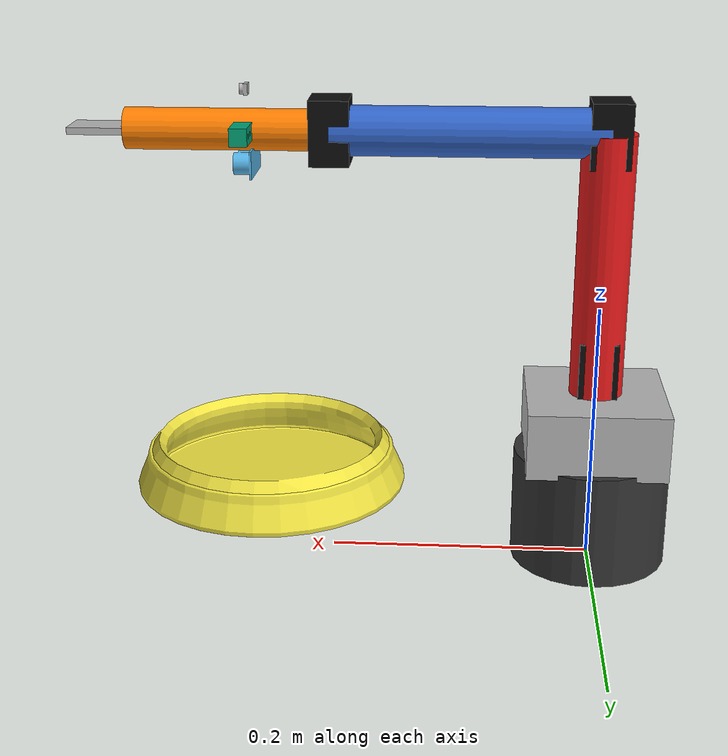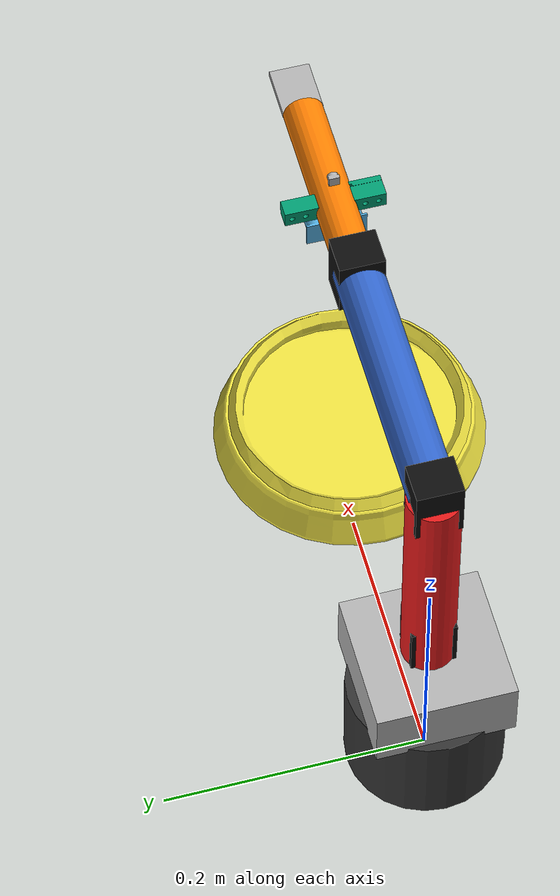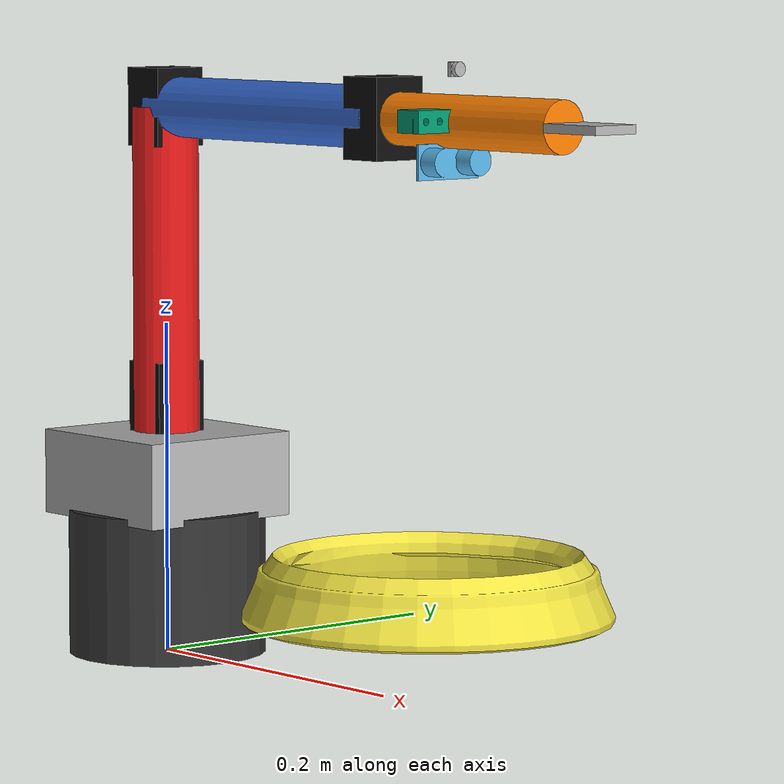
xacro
<?xml version="1.0"?>
<robot xmlns:xacro="http://www.ros.org/wiki/xacro" name="feeding_robot">

  <!-- Adaptive Feeding Robot - Top Level URDF                       -->
  <!-- 4-DOF Open Manipulator for Assistive Feeding                  -->
  <!-- Anglia Ruskin University                                      -->

  <xacro:arg name="use_sim" default="true"/>
  <xacro:arg name="use_meshes" default="false"/>

  <!-- Material definitions -->
  <xacro:include filename="$(find feeding_robot)/description/materials.xacro"/>

  <!-- Inertia calculation macros -->
  <xacro:include filename="$(find feeding_robot)/description/inertial_macros.xacro"/>

  <!-- Core robot description: links, joints, kinematics -->
  <xacro:include filename="$(find feeding_robot)/description/feeding_robot_core.xacro"/>

  <!-- ros2_control hardware interfaces -->
  <xacro:include filename="$(find feeding_robot)/description/feeding_robot_ros2_control.xacro"/>

  <!-- Gazebo-specific plugins and materials (only for simulation) -->
  <xacro:if value="$(arg use_sim)">
    <xacro:include filename="$(find feeding_robot)/description/gazebo_plugins.xacro"/>
  </xacro:if>

</robot>

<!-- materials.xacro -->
<robot xmlns:xacro="http://www.ros.org/wiki/xacro">

  <material name="white">
    <color rgba="1.0 1.0 1.0 1.0"/>
  </material>

  <material name="dark_grey">
    <color rgba="0.2 0.2 0.2 1.0"/>
  </material>

  <material name="light_grey">
    <color rgba="0.7 0.7 0.7 1.0"/>
  </material>

  <material name="blue">
    <color rgba="0.2 0.4 0.8 1.0"/>
  </material>

  <material name="red">
    <color rgba="0.9 0.1 0.1 1.0"/>
  </material>

  <material name="orange">
    <color rgba="1.0 0.5 0.0 1.0"/>
  </material>

  <material name="green">
    <color rgba="0.2 0.8 0.2 1.0"/>
  </material>

  <material name="black">
    <color rgba="0.05 0.05 0.05 1.0"/>
  </material>

</robot>

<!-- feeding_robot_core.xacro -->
<robot xmlns:xacro="http://www.ros.org/wiki/xacro">

  <!-- Adaptive Feeding Robot - 4 DOF Open Manipulator               -->
  <!-- CAD: Auto Feeder SSE v222.step                                -->
  <!-- Joints: Base Y, Lower Z, Upper Z, Feeder                     -->
  <!-- Actuators: 4x Dynamixel XM430-W350R                          -->
  <!-- CAD coordinate system: Z up, X horizontal (arm extends +X)   -->
  <!-- Assembly bounds (mm): X[-75,343] Y[-55,56] Z[-25,425]        -->

  <!-- ==================== PARAMETERS ==================== -->

  <!-- Joint positions in CAD coordinates (mm), converted to metres -->
  <!-- These are derived from the bounding box analysis of grouped solids -->

  <!-- Base Y joint: at top of base platform, Z=88mm -->
  <xacro:property name="base_top_z" value="0.088"/>

  <!-- Lower Z joint (shoulder): at Z=131mm, X=-16mm -->
  <!-- This is where the shoulder motor stack meets the vertical arm -->
  <xacro:property name="shoulder_joint_z" value="0.131"/>

  <!-- Upper Z joint (elbow): at top of vertical arm, Z=331mm, X=-5mm -->
  <!-- Transition from vertical to horizontal arm -->
  <xacro:property name="elbow_joint_z" value="0.331"/>
  <xacro:property name="lower_arm_length" value="${elbow_joint_z - shoulder_joint_z}"/>

  <!-- Feeder joint (wrist): at X=194mm from CAD origin, Z=351mm -->
  <!-- Where the horizontal arm meets the feeder end effector -->
  <xacro:property name="upper_arm_length" value="0.199"/>

  <!-- Feeder length to tip -->
  <xacro:property name="feeder_length" value="0.148"/>

  <!-- Motor specs: Dynamixel XM430-W350R -->
  <xacro:property name="max_velocity" value="4.8172"/>
  <xacro:property name="max_effort" value="4.1"/>

  <!-- Mesh file paths -->
  <xacro:property name="mesh_vis" value="package://feeding_robot/meshes/visual"/>
  <xacro:property name="mesh_col" value="package://feeding_robot/meshes/collision"/>

  <!-- Switch between mesh and primitive visuals -->
  <xacro:arg name="use_meshes" default="false"/>
  <xacro:property name="use_meshes" value="$(arg use_meshes)"/>

  <!-- STL scale: CAD is in mm, URDF uses metres -->
  <xacro:property name="stl_scale" value="0.001 0.001 0.001"/>

  <!-- ==================== WORLD LINK ==================== -->
  <link name="world"/>

  <joint name="world_to_base" type="fixed">
    <parent link="world"/>
    <child link="base_link"/>
    <origin xyz="0 0 0" rpy="0 0 0"/>
  </joint>

  <!-- ==================== BASE LINK ==================== -->
  <!-- CAD solids 59-63: base platform, Z[-25, 88]mm -->
  <link name="base_link">
    <xacro:if value="${use_meshes}">
      <visual>
        <geometry>
          <mesh filename="${mesh_vis}/base_link.stl" scale="${stl_scale}"/>
        </geometry>
        <origin xyz="0 0 0" rpy="0 0 0"/>
        <material name="dark_grey"/>
      </visual>
      <collision>
        <geometry>
          <mesh filename="${mesh_col}/base_link.stl" scale="${stl_scale}"/>
        </geometry>
        <origin xyz="0 0 0" rpy="0 0 0"/>
      </collision>
    </xacro:if>
    <xacro:unless value="${use_meshes}">
      <visual>
        <geometry>
          <cylinder radius="0.060" length="${base_top_z}"/>
        </geometry>
        <origin xyz="0 0 ${base_top_z/2}" rpy="0 0 0"/>
        <material name="dark_grey"/>
      </visual>
      <collision>
        <geometry>
          <cylinder radius="0.060" length="${base_top_z}"/>
        </geometry>
        <origin xyz="0 0 ${base_top_z/2}" rpy="0 0 0"/>
      </collision>
    </xacro:unless>
    <inertial>
      <mass value="0.8"/>
      <origin xyz="-0.034 0 0.032" rpy="0 0 0"/>
      <inertia ixx="0.002" ixy="0.0" ixz="0.0"
               iyy="0.002" iyz="0.0" izz="0.001"/>
    </inertial>
  </link>

  <!-- ==================== BASE Y JOINT (Yaw) ==================== -->
  <!-- At the top of the base platform, rotates around vertical Z axis -->
  <joint name="base_y_joint" type="continuous">
    <parent link="base_link"/>
    <child link="shoulder_link"/>
    <origin xyz="0 0 ${base_top_z}" rpy="0 0 0"/>
    <axis xyz="0 0 1"/>
    <limit velocity="${max_velocity}" effort="${max_effort}"/>
    <dynamics damping="0.5" friction="0.1"/>
  </joint>

  <!-- ==================== SHOULDER LINK ==================== -->
  <!-- CAD solids 0-10,58: motor stack, Z[81, 132]mm -->
  <!-- This link sits on top of the base and contains the shoulder motors -->
  <link name="shoulder_link">
    <xacro:if value="${use_meshes}">
      <visual>
        <geometry>
          <mesh filename="${mesh_vis}/shoulder_link.stl" scale="${stl_scale}"/>
        </geometry>
        <!-- Shift mesh so base_y_joint (CAD 0,0,88) is at link origin -->
        <origin xyz="0 0 -0.088" rpy="0 0 0"/>
        <material name="dark_grey"/>
      </visual>
      <collision>
        <geometry>
          <mesh filename="${mesh_col}/shoulder_link.stl" scale="${stl_scale}"/>
        </geometry>
        <origin xyz="0 0 -0.088" rpy="0 0 0"/>
      </collision>
    </xacro:if>
    <xacro:unless value="${use_meshes}">
      <visual>
        <geometry>
          <box size="0.105 0.105 0.051"/>
        </geometry>
        <origin xyz="0 0 ${(shoulder_joint_z - base_top_z)/2}" rpy="0 0 0"/>
        <material name="light_grey"/>
      </visual>
      <collision>
        <geometry>
          <box size="0.105 0.105 0.051"/>
        </geometry>
        <origin xyz="0 0 ${(shoulder_joint_z - base_top_z)/2}" rpy="0 0 0"/>
      </collision>
    </xacro:unless>
    <inertial>
      <mass value="0.5"/>
      <origin xyz="0 0 ${(shoulder_joint_z - base_top_z)/2}" rpy="0 0 0"/>
      <inertia ixx="0.001" ixy="0.0" ixz="0.0"
               iyy="0.001" iyz="0.0" izz="0.001"/>
    </inertial>
  </link>

  <!-- ==================== LOWER Z JOINT (Shoulder Pitch) ==================== -->
  <!-- At the top of the shoulder motor stack, Z=131mm -->
  <joint name="lower_z_joint" type="revolute">
    <parent link="shoulder_link"/>
    <child link="lower_arm_link"/>
    <origin xyz="0 0 ${shoulder_joint_z - base_top_z}" rpy="0 0 0"/>
    <axis xyz="0 1 0"/>
    <limit lower="${-90.0 * pi / 180.0}" upper="${90.0 * pi / 180.0}"
           velocity="${max_velocity}" effort="${max_effort}"/>
    <dynamics damping="0.5" friction="0.1"/>
  </joint>

  <!-- ==================== LOWER ARM LINK ==================== -->
  <!-- CAD solids 11-21,23-26: vertical arm segment, Z[127, 331]mm -->
  <!-- Goes upward 200mm from shoulder to elbow -->
  <link name="lower_arm_link">
    <xacro:if value="${use_meshes}">
      <visual>
        <geometry>
          <mesh filename="${mesh_vis}/lower_arm_link.stl" scale="${stl_scale}"/>
        </geometry>
        <origin xyz="0.016 0 -0.131" rpy="0 0 0"/>
        <material name="light_grey"/>
      </visual>
      <collision>
        <geometry>
          <mesh filename="${mesh_col}/lower_arm_link.stl" scale="${stl_scale}"/>
        </geometry>
        <origin xyz="0.016 0 -0.131" rpy="0 0 0"/>
      </collision>
    </xacro:if>
    <xacro:unless value="${use_meshes}">
      <visual>
        <geometry>
          <cylinder radius="0.020" length="${lower_arm_length}"/>
        </geometry>
        <origin xyz="0 0 ${lower_arm_length/2}" rpy="0 0 0"/>
        <material name="red"/>
      </visual>
      <visual>
        <geometry>
          <box size="0.029 0.034 0.047"/>
        </geometry>
        <origin xyz="0 0 0.023" rpy="0 0 0"/>
        <material name="black"/>
      </visual>
      <collision>
        <geometry>
          <box size="0.029 0.045 ${lower_arm_length}"/>
        </geometry>
        <origin xyz="0 0 ${lower_arm_length/2}" rpy="0 0 0"/>
      </collision>
    </xacro:unless>
    <inertial>
      <mass value="0.5"/>
      <origin xyz="0 0 ${lower_arm_length/2}" rpy="0 0 0"/>
      <inertia ixx="0.003" ixy="0.0" ixz="0.0"
               iyy="0.003" iyz="0.0" izz="0.0003"/>
    </inertial>
  </link>

  <!-- ==================== UPPER Z JOINT (Elbow Pitch) ==================== -->
  <!-- At the top of the vertical arm, Z=331mm, transition to horizontal -->
  <joint name="upper_z_joint" type="revolute">
    <parent link="lower_arm_link"/>
    <child link="upper_arm_link"/>
    <origin xyz="0 0 ${lower_arm_length}" rpy="0 0 0"/>
    <axis xyz="0 -1 0"/>
    <limit lower="${-120.0 * pi / 180.0}" upper="${75.0 * pi / 180.0}"
           velocity="${max_velocity}" effort="${max_effort}"/>
    <dynamics damping="0.3" friction="0.1"/>
  </joint>

  <!-- ==================== UPPER ARM LINK ==================== -->
  <!-- CAD solids 22,27-52: horizontal arm, X[-28, 198]mm Z[331, 386]mm -->
  <!-- Extends horizontally ~200mm from elbow to wrist -->
  <link name="upper_arm_link">
    <xacro:if value="${use_meshes}">
      <visual>
        <geometry>
          <mesh filename="${mesh_vis}/upper_arm_link.stl" scale="${stl_scale}"/>
        </geometry>
        <origin xyz="0.005 0 -0.331" rpy="0 0 0"/>
        <material name="light_grey"/>
      </visual>
      <collision>
        <geometry>
          <mesh filename="${mesh_col}/upper_arm_link.stl" scale="${stl_scale}"/>
        </geometry>
        <origin xyz="0.005 0 -0.331" rpy="0 0 0"/>
      </collision>
    </xacro:if>
    <xacro:unless value="${use_meshes}">
      <visual>
        <geometry>
          <cylinder radius="0.018" length="${upper_arm_length}"/>
        </geometry>
        <origin xyz="${upper_arm_length/2} 0 0" rpy="0 ${pi/2} 0"/>
        <material name="blue"/>
      </visual>
      <visual>
        <geometry>
          <box size="0.029 0.034 0.047"/>
        </geometry>
        <origin xyz="0 0 0" rpy="0 0 0"/>
        <material name="black"/>
      </visual>
      <collision>
        <geometry>
          <box size="${upper_arm_length} 0.045 0.055"/>
        </geometry>
        <origin xyz="${upper_arm_length/2} 0 0" rpy="0 0 0"/>
      </collision>
    </xacro:unless>
    <inertial>
      <mass value="0.6"/>
      <origin xyz="${upper_arm_length/2} 0 0" rpy="0 0 0"/>
      <inertia ixx="0.0005" ixy="0.0" ixz="0.0"
               iyy="0.004" iyz="0.0" izz="0.004"/>
    </inertial>
  </link>

  <!-- ==================== FEEDER JOINT (Wrist Pitch) ==================== -->
  <!-- Where horizontal arm meets feeder, CAD X=194mm -->
  <joint name="feeder_joint" type="revolute">
    <parent link="upper_arm_link"/>
    <child link="feeder_link"/>
    <origin xyz="${upper_arm_length} 0 0" rpy="0 0 0"/>
    <axis xyz="0 -1 0"/>
    <limit lower="${-90.0 * pi / 180.0}" upper="${115.0 * pi / 180.0}"
           velocity="${max_velocity}" effort="${max_effort}"/>
    <dynamics damping="0.2" friction="0.05"/>
  </joint>

  <!-- ==================== FEEDER LINK (End Effector) ==================== -->
  <!-- CAD solids 53-57,64-66: feeder mechanism, X[194, 342]mm -->
  <link name="feeder_link">
    <xacro:if value="${use_meshes}">
      <visual>
        <geometry>
          <mesh filename="${mesh_vis}/frontface.stl" scale="${stl_scale}"/>
        </geometry>
        <!-- Offset: shift mesh so wrist joint (CAD X=194,Y=0,Z=351) is at link origin -->
        <origin xyz="-0.194 0 -0.351" rpy="0 0 0"/>
        <material name="black"/>
      </visual>
      <collision>
        <geometry>
          <mesh filename="${mesh_col}/feeder_link.stl" scale="${stl_scale}"/>
        </geometry>
        <origin xyz="-0.194 0 -0.351" rpy="0 0 0"/>
      </collision>
    </xacro:if>
    <xacro:unless value="${use_meshes}">
      <visual>
        <geometry>
          <cylinder radius="0.015" length="${feeder_length}"/>
        </geometry>
        <origin xyz="${feeder_length/2} 0 0" rpy="0 ${pi/2} 0"/>
        <material name="orange"/>
      </visual>
      <visual>
        <geometry>
          <box size="0.029 0.034 0.047"/>
        </geometry>
        <origin xyz="0 0 0" rpy="0 0 0"/>
        <material name="black"/>
      </visual>
      <visual>
        <geometry>
          <box size="0.04 0.03 0.005"/>
        </geometry>
        <origin xyz="${feeder_length + 0.02} 0 0" rpy="0 0 0"/>
        <material name="light_grey"/>
      </visual>
      <collision>
        <geometry>
          <box size="${feeder_length + 0.04} 0.103 0.121"/>
        </geometry>
        <origin xyz="${feeder_length/2} 0 0" rpy="0 0 0"/>
      </collision>
    </xacro:unless>
    <inertial>
      <mass value="0.35"/>
      <origin xyz="${feeder_length/2} 0 0" rpy="0 0 0"/>
      <inertia ixx="0.0005" ixy="0.0" ixz="0.0"
               iyy="0.001" iyz="0.0" izz="0.001"/>
    </inertial>
  </link>

  <!-- ==================== END EFFECTOR FRAME ==================== -->
  <link name="spoon_tip_frame"/>

  <joint name="feeder_to_spoon_tip" type="fixed">
    <parent link="feeder_link"/>
    <child link="spoon_tip_frame"/>
    <origin xyz="${feeder_length + 0.02} 0 0" rpy="0 0 0"/>
  </joint>

  <!-- ==================== CAMERA (Raspberry Pi Camera V2.1) ==================== -->
  <link name="camera_link">
    <visual>
      <geometry>
        <mesh filename="${mesh_vis}/camera.stl" scale="${stl_scale}"/>
      </geometry>
      <origin xyz="${-0.194 - 0.03} 0 ${-0.351 + 0.05}" rpy="0 0 0"/>
    </visual>
    <collision>
      <geometry>
        <mesh filename="${mesh_vis}/camera.stl" scale="${stl_scale}"/>
      </geometry>
      <origin xyz="${-0.194 - 0.03} 0 ${-0.351 + 0.05}" rpy="0 0 0"/>
    </collision>
    <inertial>
      <mass value="0.003"/>
      <inertia ixx="0.000001" ixy="0.0" ixz="0.0"
               iyy="0.000001" iyz="0.0" izz="0.000001"/>
    </inertial>
  </link>

  <joint name="camera_joint" type="fixed">
    <parent link="feeder_link"/>
    <child link="camera_link"/>
    <origin xyz="0.03 0 -0.05" rpy="0 0 0"/>
  </joint>

  <link name="camera_optical_frame"/>

  <joint name="camera_optical_joint" type="fixed">
    <parent link="camera_link"/>
    <child link="camera_optical_frame"/>
    <origin xyz="0 0 0" rpy="${-pi/2} 0 ${-pi/2}"/>
  </joint>

  <!-- ==================== ULTRASONIC SENSOR (HC-SR04) ==================== -->
  <link name="ultrasonic_link">
    <visual>
      <geometry>
        <mesh filename="${mesh_vis}/sonar.stl" scale="${stl_scale}"/>
      </geometry>
      <origin xyz="${-0.194 - 0.03} -0.116 ${-0.351 - 0.04}" rpy="0 0 0"/>
    </visual>
    <collision>
      <geometry>
        <mesh filename="${mesh_vis}/sonar.stl" scale="${stl_scale}"/>
      </geometry>
      <origin xyz="${-0.194 - 0.03} -0.116 ${-0.351 - 0.04}" rpy="0 0 0"/>
    </collision>
    <inertial>
      <mass value="0.010"/>
      <inertia ixx="0.000001" ixy="0.0" ixz="0.0"
               iyy="0.000001" iyz="0.0" izz="0.000001"/>
    </inertial>
  </link>

  <joint name="ultrasonic_joint" type="fixed">
    <parent link="feeder_link"/>
    <child link="ultrasonic_link"/>
    <origin xyz="0.03 0 0.04" rpy="0 0 0"/>
  </joint>

  <!-- ==================== LOAD CELL (HX711) ==================== -->
  <link name="load_cell_frame">
    <visual>
      <geometry>
        <mesh filename="${mesh_vis}/forceSensor.stl" scale="${stl_scale}"/>
      </geometry>
      <!-- CAD origin offset minus load_cell_joint offset (feeder_length, 0, 0) -->
      <origin xyz="${-0.194 - feeder_length} 0 -0.351" rpy="0 0 0"/>
    </visual>
    <collision>
      <geometry>
        <mesh filename="${mesh_vis}/forceSensor.stl" scale="${stl_scale}"/>
      </geometry>
      <origin xyz="${-0.194 - feeder_length} 0 -0.351" rpy="0 0 0"/>
    </collision>
    <inertial>
      <mass value="0.010"/>
      <inertia ixx="0.000001" ixy="0.0" ixz="0.0"
               iyy="0.000001" iyz="0.0" izz="0.000001"/>
    </inertial>
  </link>

  <joint name="load_cell_joint" type="fixed">
    <parent link="feeder_link"/>
    <child link="load_cell_frame"/>
    <origin xyz="${feeder_length} 0 0" rpy="0 0 0"/>
  </joint>

  <!-- ==================== PLATE (fixed in front of robot) ==================== -->
  <link name="plate_link">
    <visual>
      <geometry>
        <mesh filename="${mesh_vis}/plate_printing.stl"/>
      </geometry>
      <origin xyz="0 0 0" rpy="0 0 0"/>
    </visual>
    <collision>
      <geometry>
        <mesh filename="${mesh_vis}/plate_printing.stl"/>
      </geometry>
    </collision>
    <inertial>
      <mass value="0.2"/>
      <inertia ixx="0.001" ixy="0.0" ixz="0.0"
               iyy="0.001" iyz="0.0" izz="0.001"/>
    </inertial>
  </link>

  <joint name="plate_joint" type="fixed">
    <parent link="world"/>
    <child link="plate_link"/>
    <!-- Plate: below feeder head (arm extends to -X in RViz due to flipped axes) -->
    <!--origin xyz="-0.25 0.0 -0.15" rpy="0 0 0"/-->
    <origin xyz="0.25 -0.25 0.050" rpy="0 0 0"/>
  </joint>

</robot>
